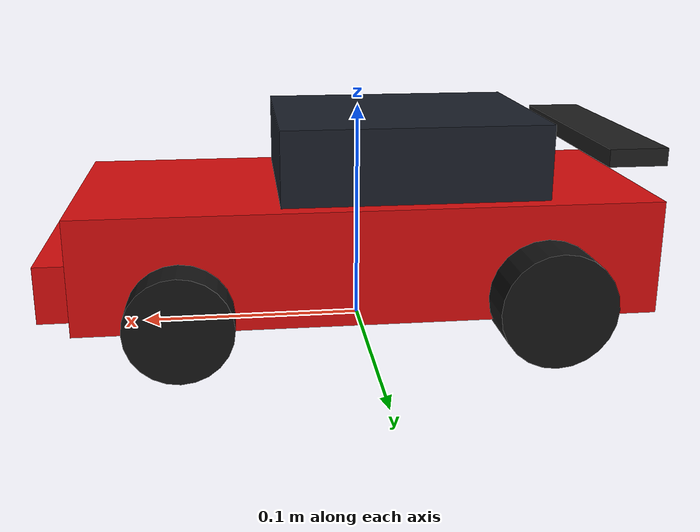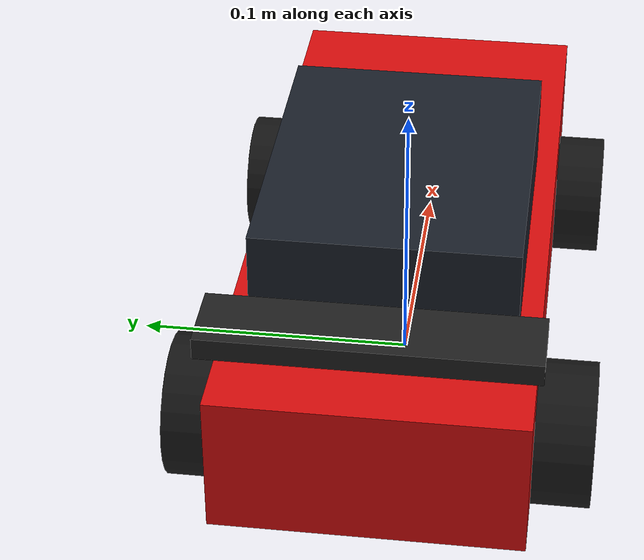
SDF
<?xml version="1.0"?>
<sdf version="1.6">
  <model name="model_car">
    <static>true</static>
    <link name="body">
      <visual name="chassis">
        <pose>0 0 0.04 0 0 0</pose>
        <geometry><box><size>0.25 0.105 0.05</size></box></geometry>
        <material><ambient>0.45 0.02 0.02 1</ambient><diffuse>0.85 0.05 0.05 1</diffuse>
          <specular>0.9 0.9 0.9 64</specular></material>
      </visual>
      <visual name="cabin">
        <pose>-0.02 0 0.08 0 0 0</pose>
        <geometry><box><size>0.115 0.09 0.035</size></box></geometry>
        <material><ambient>0.05 0.06 0.08 1</ambient><diffuse>0.10 0.12 0.16 1</diffuse>
          <specular>0.9 0.9 0.95 80</specular></material>
      </visual>
      <visual name="nose">
        <pose>0.12 0 0.03 0 0 0</pose>
        <geometry><box><size>0.04 0.085 0.025</size></box></geometry>
        <material><ambient>0.45 0.02 0.02 1</ambient><diffuse>0.85 0.05 0.05 1</diffuse>
          <specular>0.9 0.9 0.9 64</specular></material>
      </visual>
      <visual name="wing">
        <pose>-0.11 0 0.085 0 0 0</pose>
        <geometry><box><size>0.025 0.11 0.0075</size></box></geometry>
        <material><ambient>0.06 0.06 0.06 1</ambient><diffuse>0.12 0.12 0.12 1</diffuse></material>
      </visual>
      <collision name="col">
        <pose>0 0 0.045 0 0 0</pose>
        <geometry><box><size>0.25 0.11 0.09</size></box></geometry>
      </collision>
    </link>
    <link name="wheels">
      <visual name="fl"><pose>0.08 0.06 0.0225 1.5708 0 0</pose>
        <geometry><cylinder><radius>0.0225</radius><length>0.02</length></cylinder></geometry>
        <material><ambient>0.03 0.03 0.03 1</ambient><diffuse>0.08 0.08 0.08 1</diffuse></material></visual>
      <visual name="fr"><pose>0.08 -0.06 0.0225 1.5708 0 0</pose>
        <geometry><cylinder><radius>0.0225</radius><length>0.02</length></cylinder></geometry>
        <material><ambient>0.03 0.03 0.03 1</ambient><diffuse>0.08 0.08 0.08 1</diffuse></material></visual>
      <visual name="rl"><pose>-0.075 0.06 0.025 1.5708 0 0</pose>
        <geometry><cylinder><radius>0.025</radius><length>0.025</length></cylinder></geometry>
        <material><ambient>0.03 0.03 0.03 1</ambient><diffuse>0.08 0.08 0.08 1</diffuse></material></visual>
      <visual name="rr"><pose>-0.075 -0.06 0.025 1.5708 0 0</pose>
        <geometry><cylinder><radius>0.025</radius><length>0.025</length></cylinder></geometry>
        <material><ambient>0.03 0.03 0.03 1</ambient><diffuse>0.08 0.08 0.08 1</diffuse></material></visual>
    </link>
  </model>
</sdf>
